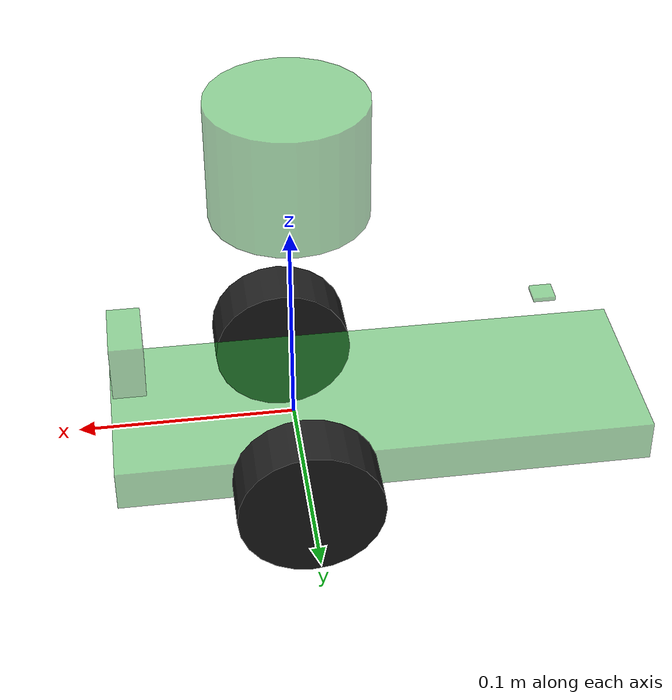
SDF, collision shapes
<sdf version='1.7'>
  <model name='gopigo3'>
    <link name='base_footprint'>
      <inertial>
        <pose>-0.023176 0 0.039614 0 -0 0</pose>
        <mass>0.932</mass>
        <inertia>
          <ixx>0.00402406</ixx>
          <ixy>-0.000156</ixy>
          <ixz>0.000101343</ixz>
          <iyy>0.00749146</iyy>
          <iyz>-0.000223</iyz>
          <izz>0.0053554</izz>
        </inertia>
      </inertial>
      <collision name='base_footprint_fixed_joint_lump__base_link_collision'>
        <pose>-0.038 0 0 0 -0 0</pose>
        <geometry>
          <box>
            <size>0.245 0.088 0.02</size>
          </box>
        </geometry>
        <surface>
          <contact>
            <ode/>
          </contact>
          <friction>
            <ode/>
          </friction>
        </surface>
      </collision>
      <collision name='base_footprint_fixed_joint_lump__camera_link_collision_1'>
        <pose>0.075 0 0.043 0 -0 0</pose>
        <geometry>
          <box>
            <size>0.015 0.03 0.027</size>
          </box>
        </geometry>
        <surface>
          <contact>
            <ode/>
          </contact>
          <friction>
            <ode/>
          </friction>
        </surface>
      </collision>
      <collision name='base_footprint_fixed_joint_lump__name_link_collision_2'>
        <pose>-0.115 0 0.057 0 -0 0</pose>
        <geometry>
          <box>
            <size>0.01 0.01 0.002</size>
          </box>
        </geometry>
        <surface>
          <contact>
            <ode/>
          </contact>
          <friction>
            <ode/>
          </friction>
        </surface>
      </collision>
      <collision name='base_footprint_fixed_joint_lump__base_scan_collision_3'>
        <pose>0 0 0.14 0 -0 0</pose>
        <geometry>
          <cylinder>
            <length>0.055</length>
            <radius>0.035</radius>
          </cylinder>
        </geometry>
        <surface>
          <contact>
            <ode/>
          </contact>
          <friction>
            <ode/>
          </friction>
        </surface>
      </collision>
      <visual name='base_footprint_fixed_joint_lump__base_link_visual'>
        <pose>0 0 0 0 -0 0</pose>
        <geometry>
          <mesh>
            <scale>0.0012 0.0012 0.0012</scale>
            <uri>model://robot_description/meshes/GoPiGo3_Body90.obj</uri>
          </mesh>
        </geometry>
        <material>
          <script>
            <name>Gazebo/GreenTransparent</name>
            <uri>file://media/materials/scripts/gazebo.material</uri>
          </script>
        </material>
      </visual>
      <visual name='base_footprint_fixed_joint_lump__camera_link_visual_1'>
        <pose>0.07 0 0.03 0 1.5708 0</pose>
        <geometry>
          <mesh>
            <scale>0.00125 0.00125 0.00125</scale>
            <uri>model://robot_description/meshes/piCamera.stl</uri>
          </mesh>
        </geometry>
        <material>
          <script>
            <name>Gazebo/Red</name>
            <uri>file://media/materials/scripts/gazebo.material</uri>
          </script>
        </material>
      </visual>
      <visual name='base_footprint_fixed_joint_lump__name_link_visual_2'>
        <pose>-0.115 0 0.057 0 -0 0</pose>
        <geometry>
          <mesh>
            <scale>0.0008 0.0008 0.0008</scale>
            <uri>model://robot_description/meshes/number2.stl</uri>
          </mesh>
        </geometry>
        <material>
          <script>
            <name>Gazebo/Yellow</name>
            <uri>file://media/materials/scripts/gazebo.material</uri>
          </script>
        </material>
      </visual>
      <visual name='base_footprint_fixed_joint_lump__base_scan_visual_3'>
        <pose>0.005 0 0.14 0 -0 0</pose>
        <geometry>
          <mesh>
            <scale>0.001 0.001 0.001</scale>
            <uri>model://robot_description/meshes/Lidar.stl</uri>
          </mesh>
        </geometry>
        <material>
          <script>
            <name>Gazebo/Blue</name>
            <uri>file://media/materials/scripts/gazebo.material</uri>
          </script>
        </material>
      </visual>
      <sensor name='camera1' type='camera'>
        <always_on>1</always_on>
        <visualize>0</visualize>
        <camera name='front'>
          <horizontal_fov>1.39626</horizontal_fov>
          <image>
            <width>800</width>
            <height>800</height>
            <format>R8G8B8</format>
          </image>
          <clip>
            <near>0.02</near>
            <far>300</far>
          </clip>
        </camera>
        <plugin name='camera_controller' filename='libgazebo_ros_camera.so'>
          <alwaysOn>1</alwaysOn>
          <updateRate>30.0</updateRate>
          <cameraName>gopigo/camera1</cameraName>
          <imageTopicName>image_raw</imageTopicName>
          <cameraInfoTopicName>camera_info</cameraInfoTopicName>
          <frameName>camera_rgb_frame</frameName>
          <hackBaseline>0.07</hackBaseline>
          <distortionK1>0.0</distortionK1>
          <distortionK2>0.0</distortionK2>
          <distortionK3>0.0</distortionK3>
          <distortionT1>0.0</distortionT1>
          <distortionT2>0.0</distortionT2>
        </plugin>
        <pose>0.07 0 0.03 0 -0 0</pose>
      </sensor>
      <sensor name='lds_lfcd_sensor' type='ray'>
        <visualize>0</visualize>
        <update_rate>10</update_rate>
        <ray>
          <scan>
            <horizontal>
              <samples>720</samples>
              <resolution>1</resolution>
              <min_angle>0</min_angle>
              <max_angle>6.28319</max_angle>
            </horizontal>
          </scan>
          <range>
            <min>0.12</min>
            <max>10</max>
            <resolution>0.015</resolution>
          </range>
          <noise>
            <type>gaussian</type>
            <mean>0</mean>
            <stddev>0.02</stddev>
          </noise>
        </ray>
        <plugin name='gazebo_ros_lds_lfcd_controller' filename='libgazebo_ros_laser.so'>
          <topicName>scan</topicName>
          <frameName>base_scan</frameName>
        </plugin>
        <pose>0 0 0.14 0 -0 0</pose>
      </sensor>
    </link>
    <joint name='wheel_left_joint' type='revolute'>
      <pose relative_to='base_footprint'>0 0.058 0 0 -0 1.57</pose>
      <parent>base_footprint</parent>
      <child>wheel_left_link</child>
      <axis>
        <xyz>1 0 0</xyz>
        <limit>
          <lower>-1e+16</lower>
          <upper>1e+16</upper>
        </limit>
        <dynamics>
          <spring_reference>0</spring_reference>
          <spring_stiffness>0</spring_stiffness>
        </dynamics>
      </axis>
    </joint>
    <link name='wheel_left_link'>
      <pose relative_to='wheel_left_joint'>0 0 0 0 -0 0</pose>
      <inertial>
        <pose>0 0 0 0 -0 0</pose>
        <mass>0.032</mass>
        <inertia>
          <ixx>1.74e-05</ixx>
          <ixy>0</ixy>
          <ixz>0</ixz>
          <iyy>1.05e-05</iyy>
          <iyz>0</iyz>
          <izz>1.05e-05</izz>
        </inertia>
      </inertial>
      <collision name='wheel_left_link_collision'>
        <pose>0 0 0 0 1.5708 0</pose>
        <geometry>
          <cylinder>
            <length>0.026</length>
            <radius>0.033</radius>
          </cylinder>
        </geometry>
        <surface>
          <contact>
            <ode>
              <kp>500000</kp>
              <kd>10</kd>
              <max_vel>0.5</max_vel>
              <min_depth>0.001</min_depth>
            </ode>
          </contact>
          <friction>
            <ode>
              <mu>0.5</mu>
              <mu2>0.5</mu2>
              <fdir1>1 0 0</fdir1>
            </ode>
          </friction>
        </surface>
      </collision>
      <visual name='wheel_left_link_visual'>
        <pose>-0.22581 -0.200334 -0.033582 0 -0 0</pose>
        <geometry>
          <mesh>
            <scale>0.001158 0.001158 0.001158</scale>
            <uri>model://robot_description/meshes/GoPiGo3_Wheel.stl</uri>
          </mesh>
        </geometry>
        <material>
          <script>
            <name>Gazebo/FlatBlack</name>
            <uri>file://media/materials/scripts/gazebo.material</uri>
          </script>
        </material>
      </visual>
    </link>
    <joint name='wheel_right_joint' type='revolute'>
      <pose relative_to='base_footprint'>0 -0.058 0 0 0 -1.57</pose>
      <parent>base_footprint</parent>
      <child>wheel_right_link</child>
      <axis>
        <xyz>-1 0 0</xyz>
        <limit>
          <lower>-1e+16</lower>
          <upper>1e+16</upper>
        </limit>
        <dynamics>
          <spring_reference>0</spring_reference>
          <spring_stiffness>0</spring_stiffness>
        </dynamics>
      </axis>
    </joint>
    <link name='wheel_right_link'>
      <pose relative_to='wheel_right_joint'>0 0 0 0 -0 0</pose>
      <inertial>
        <pose>0 0 0 0 -0 0</pose>
        <mass>0.032</mass>
        <inertia>
          <ixx>1.74e-05</ixx>
          <ixy>0</ixy>
          <ixz>0</ixz>
          <iyy>1.05e-05</iyy>
          <iyz>0</iyz>
          <izz>1.05e-05</izz>
        </inertia>
      </inertial>
      <collision name='wheel_right_link_collision'>
        <pose>0 0 0 0 1.5708 0</pose>
        <geometry>
          <cylinder>
            <length>0.026</length>
            <radius>0.033</radius>
          </cylinder>
        </geometry>
        <surface>
          <contact>
            <ode>
              <kp>500000</kp>
              <kd>10</kd>
              <max_vel>0.5</max_vel>
              <min_depth>0.001</min_depth>
            </ode>
          </contact>
          <friction>
            <ode>
              <mu>0.5</mu>
              <mu2>0.5</mu2>
              <fdir1>1 0 0</fdir1>
            </ode>
          </friction>
        </surface>
      </collision>
      <visual name='wheel_right_link_visual'>
        <pose>-0.22581 -0.200334 -0.033582 0 -0 0</pose>
        <geometry>
          <mesh>
            <scale>0.001158 0.001158 0.001158</scale>
            <uri>model://robot_description/meshes/GoPiGo3_Wheel.stl</uri>
          </mesh>
        </geometry>
        <material>
          <script>
            <name>Gazebo/FlatBlack</name>
            <uri>file://media/materials/scripts/gazebo.material</uri>
          </script>
        </material>
      </visual>
    </link>
    <static>0</static>
    <plugin name='gopigo3_controller' filename='libgazebo_ros_diff_drive.so'>
      <commandTopic>cmd_vel</commandTopic>
      <odometryTopic>odom</odometryTopic>
      <odometryFrame>odom</odometryFrame>
      <odometrySource>world</odometrySource>
      <publishOdomTF>1</publishOdomTF>
      <robotBaseFrame>base_footprint</robotBaseFrame>
      <publishWheelTF>0</publishWheelTF>
      <publishTf>1</publishTf>
      <publishWheelJointState>1</publishWheelJointState>
      <legacyMode>0</legacyMode>
      <updateRate>30</updateRate>
      <leftJoint>wheel_left_joint</leftJoint>
      <rightJoint>wheel_right_joint</rightJoint>
      <wheelSeparation>0.116</wheelSeparation>
      <wheelDiameter>0.066</wheelDiameter>
      <wheelAcceleration>0.5</wheelAcceleration>
      <wheelTorque>1</wheelTorque>
      <rosDebugLevel>na</rosDebugLevel>
    </plugin>
  </model>
</sdf>
